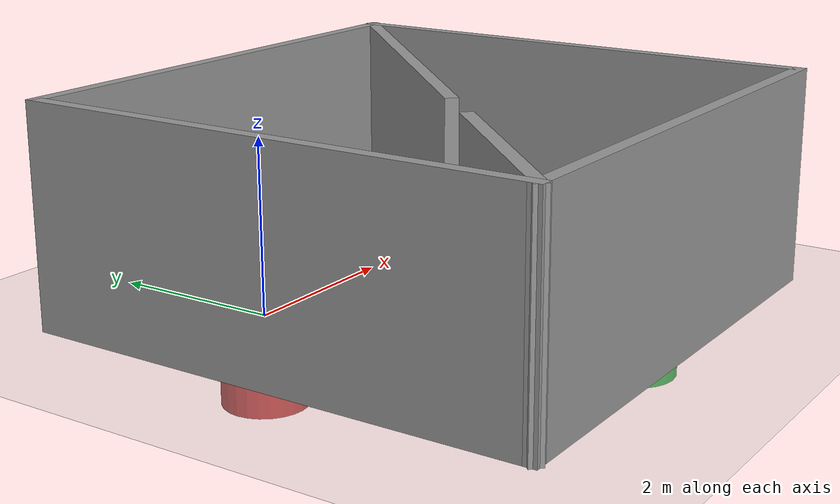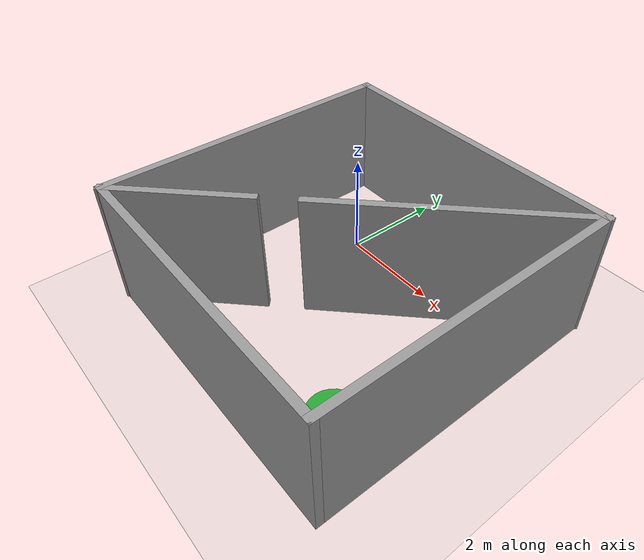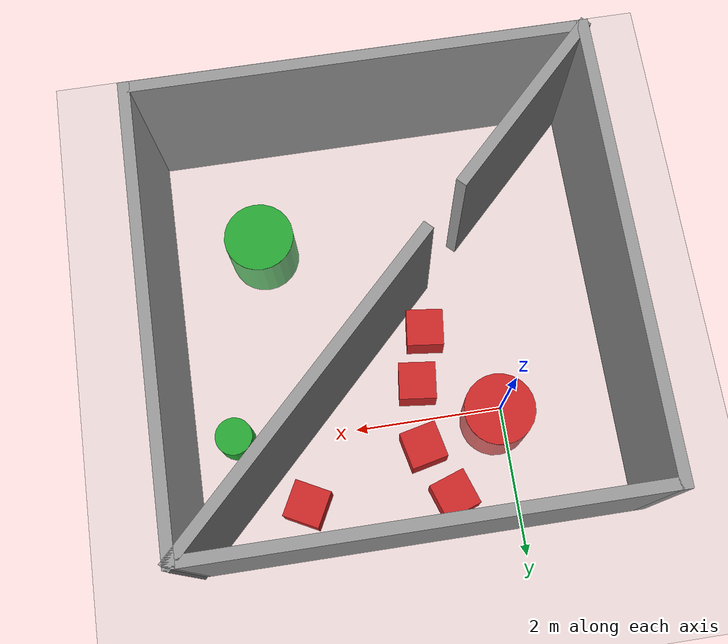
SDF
<sdf version="1.7">
 <world name="default">
  <light name="sun" type="directional">
   <pose>0 0 10 0 -0 0</pose>
   <diffuse>0.8 0.8 0.8 1</diffuse>
   <specular>0.2 0.2 0.2 1</specular>
   <attenuation>
    <range>1000</range>
    <constant>0.9</constant>
    <linear>0.01</linear>
    <quadratic>0.001</quadratic>
   </attenuation>
   <direction>-0.5 0.1 -0.9</direction>
   <spot><inner_angle>0</inner_angle><outer_angle>0</outer_angle><falloff>0</falloff></spot>
  </light>
  <model name="ground_plane">
   <static>1</static>
   <link name="link">
    <collision name="collision">
     <geometry><plane><normal>0 0 1</normal><size>100 100</size></plane></geometry>
     <surface><friction><ode><mu>100</mu><mu2>50</mu2></ode></friction></surface>
    </collision>
    <visual name="visual">
     <cast_shadows>0</cast_shadows>
     <geometry><plane><normal>0 0 1</normal><size>100 100</size></plane></geometry>
     <material>
      <script><uri>file://media/materials/scripts/gazebo.material</uri><name>Gazebo/Grey</name></script>
     </material>
    </visual>
   </link>
  </model>
  <gravity>0 0 -9.8</gravity>
  <magnetic_field>6e-06 2.3e-05 -4.2e-05</magnetic_field>
  <atmosphere type="adiabatic"/>
  <physics type="ode">
   <max_step_size>0.001</max_step_size>
   <real_time_factor>1</real_time_factor>
   <real_time_update_rate>1000</real_time_update_rate>
  </physics>
  <scene><ambient>0.4 0.4 0.4 1</ambient><background>0.7 0.7 0.7 1</background><shadows>1</shadows></scene>
  <audio><device>default</device></audio>
  <spherical_coordinates>
   <surface_model>EARTH_WGS84</surface_model>
   <latitude_deg>0</latitude_deg>
   <longitude_deg>0</longitude_deg>
   <elevation>0</elevation>
   <heading_deg>0</heading_deg>
  </spherical_coordinates>
  <model name="sq0">
   <pose>1.32814 -0.79317 0 0 -0 0</pose>
   <link name="Wall_0">
    <collision name="Wall_0_Collision">
     <geometry><box><size>6 0.15 2.5</size></box></geometry>
     <pose>0 0 1.25 0 -0 0</pose>
    </collision>
    <visual name="Wall_0_Visual">
     <pose>0 0 1.25 0 -0 0</pose>
     <geometry><box><size>6 0.15 2.5</size></box></geometry>
     <material>
      <script><uri>file://media/materials/scripts/gazebo.material</uri><name>Gazebo/Grey</name></script>
      <ambient>1 1 1 1</ambient>
     </material>
     <meta><layer>0</layer></meta>
    </visual>
    <pose>-0 2.35303 0 0 -0 0</pose>
   </link>
   <link name="Wall_10">
    <collision name="Wall_10_Collision">
     <geometry><box><size>5 0.15 2.5</size></box></geometry>
     <pose>0 0 1.25 0 -0 0</pose>
    </collision>
    <visual name="Wall_10_Visual">
     <pose>0 0 1.25 0 -0 0</pose>
     <geometry><box><size>5 0.15 2.5</size></box></geometry>
     <material>
      <script><uri>file://media/materials/scripts/gazebo.material</uri><name>Gazebo/Grey</name></script>
      <ambient>1 1 1 1</ambient>
     </material>
     <meta><layer>0</layer></meta>
    </visual>
    <pose>1.21027 0.638299 0 0 -0 -2.35619</pose>
   </link>
   <link name="Wall_3">
    <collision name="Wall_3_Collision">
     <geometry><box><size>6 0.15 2.5</size></box></geometry>
     <pose>0 0 1.25 0 -0 0</pose>
    </collision>
    <visual name="Wall_3_Visual">
     <pose>0 0 1.25 0 -0 0</pose>
     <geometry><box><size>6 0.15 2.5</size></box></geometry>
     <material>
      <script><uri>file://media/materials/scripts/gazebo.material</uri><name>Gazebo/Grey</name></script>
      <ambient>1 1 1 1</ambient>
     </material>
     <meta><layer>0</layer></meta>
    </visual>
    <pose>2.925 -0.571967 0 0 -0 -1.5708</pose>
   </link>
   <link name="Wall_5">
    <collision name="Wall_5_Collision">
     <geometry><box><size>6 0.15 2.5</size></box></geometry>
     <pose>0 0 1.25 0 -0 0</pose>
    </collision>
    <visual name="Wall_5_Visual">
     <pose>0 0 1.25 0 -0 0</pose>
     <geometry><box><size>6 0.15 2.5</size></box></geometry>
     <material>
      <script><uri>file://media/materials/scripts/gazebo.material</uri><name>Gazebo/Grey</name></script>
      <ambient>1 1 1 1</ambient>
     </material>
     <meta><layer>0</layer></meta>
    </visual>
    <pose>-0 -3.49697 0 0 -0 3.14159</pose>
   </link>
   <link name="Wall_6">
    <collision name="Wall_6_Collision">
     <geometry><box><size>6 0.15 2.5</size></box></geometry>
     <pose>0 0 1.25 0 -0 0</pose>
    </collision>
    <visual name="Wall_6_Visual">
     <pose>0 0 1.25 0 -0 0</pose>
     <geometry><box><size>6 0.15 2.5</size></box></geometry>
     <material>
      <script><uri>file://media/materials/scripts/gazebo.material</uri><name>Gazebo/Grey</name></script>
      <ambient>1 1 1 1</ambient>
     </material>
     <meta><layer>0</layer></meta>
    </visual>
    <pose>-2.925 -0.571967 0 0 -0 1.5708</pose>
   </link>
   <link name="Wall_8">
    <collision name="Wall_8_Collision">
     <geometry><box><size>2.75 0.15 2.5</size></box></geometry>
     <pose>0 0 1.25 0 -0 0</pose>
    </collision>
    <visual name="Wall_8_Visual">
     <pose>0 0 1.25 0 -0 0</pose>
     <geometry><box><size>2.75 0.15 2.5</size></box></geometry>
     <material>
      <script><uri>file://media/materials/scripts/gazebo.material</uri><name>Gazebo/Grey</name></script>
      <ambient>1 1 1 1</ambient>
     </material>
     <meta><layer>0</layer></meta>
    </visual>
    <pose>-2.00576 -2.57773 0 0 -0 0.785398</pose>
   </link>
   <static>1</static>
  </model>
  <model name="fixed_red_box">
   <link name="link">
    <inertial>
     <mass>1</mass>
     <inertia>
      <ixx>0.166667</ixx>
      <ixy>0</ixy>
      <ixz>0</ixz>
      <iyy>0.166667</iyy>
      <iyz>0</iyz>
      <izz>0.166667</izz>
     </inertia>
    </inertial>
    <visual name="visual">
     <geometry><box><size>0.5 0.5 0.5</size></box></geometry>
     <material>
      <script><name>Gazebo/Red</name><uri>file://media/materials/scripts/gazebo.material</uri></script>
      <shader type="pixel"><normal_map>__default__</normal_map></shader>
      <ambient>1 0 0 1</ambient>
      <diffuse>1 0 0 1</diffuse>
      <specular>0.1 0.1 0.1 1</specular>
      <emissive>0 0 0 1</emissive>
     </material>
    </visual>
    <collision name="collision">
     <max_contacts>5</max_contacts>
     <geometry><box><size>0.5 0.5 0.5</size></box></geometry>
     <surface>
      <friction>
       <ode><mu>0.5</mu><mu2>0.5</mu2><fdir1>0 0 0</fdir1><slip1>0</slip1><slip2>0</slip2></ode>
       <torsional>
        <coefficient>0.5</coefficient>
        <patch_radius>0</patch_radius>
        <surface_radius>0</surface_radius>
        <use_patch_radius>1</use_patch_radius>
        <ode><slip>0</slip></ode>
       </torsional>
      </friction>
      <bounce><restitution_coefficient>0</restitution_coefficient><threshold>1e+06</threshold></bounce>
      <contact>
       <collide_without_contact>0</collide_without_contact>
       <collide_without_contact_bitmask>1</collide_without_contact_bitmask>
       <collide_bitmask>1</collide_bitmask>
       <ode>
        <soft_cfm>0</soft_cfm>
        <soft_erp>0.2</soft_erp>
        <kp>1e+13</kp>
        <kd>1</kd>
        <max_vel>0.01</max_vel>
        <min_depth>0</min_depth>
       </ode>
       <bullet>
        <split_impulse>1</split_impulse>
        <split_impulse_penetration_threshold>-0.01</split_impulse_penetration_threshold>
        <soft_cfm>0</soft_cfm>
        <soft_erp>0.2</soft_erp>
        <kp>1e+13</kp>
        <kd>1</kd>
       </bullet>
      </contact>
     </surface>
    </collision>
   </link>
   <static>0</static>
   <pose>2.77426 0.934086 0.25 0 -0 1.08911</pose>
  </model>
  <model name="unit_cylinder">
   <link name="link">
    <inertial>
     <mass>1</mass>
     <inertia><ixx>0.145833</ixx><ixy>0</ixy><ixz>0</ixz><iyy>0.145833</iyy><iyz>0</iyz><izz>0.125</izz></inertia>
    </inertial>
    <visual name="visual">
     <geometry><cylinder><radius>0.25</radius><length>0.5</length></cylinder></geometry>
     <material>
      <script><name>Gazebo/Green</name><uri>file://media/materials/scripts/gazebo.material</uri></script>
      <shader type="pixel"><normal_map>__default__</normal_map></shader>
      <ambient>0 1 0 1</ambient>
      <diffuse>0 0.7 0 1</diffuse>
      <specular>0 0.01 0 1</specular>
      <emissive>0 0 0 1</emissive>
     </material>
    </visual>
    <collision name="collision">
     <geometry><cylinder><radius>0.25</radius><length>0.5</length></cylinder></geometry>
     <surface>
      <friction>
       <ode><mu>1</mu><mu2>1</mu2><fdir1>0 0 0</fdir1><slip1>0</slip1><slip2>0</slip2></ode>
       <torsional>
        <coefficient>1</coefficient>
        <patch_radius>0</patch_radius>
        <surface_radius>0</surface_radius>
        <use_patch_radius>1</use_patch_radius>
        <ode><slip>0</slip></ode>
       </torsional>
      </friction>
      <bounce><restitution_coefficient>0</restitution_coefficient><threshold>1e+06</threshold></bounce>
      <contact>
       <collide_without_contact>0</collide_without_contact>
       <collide_without_contact_bitmask>1</collide_without_contact_bitmask>
       <collide_bitmask>1</collide_bitmask>
       <ode>
        <soft_cfm>0</soft_cfm>
        <soft_erp>0.2</soft_erp>
        <kp>1e+13</kp>
        <kd>1</kd>
        <max_vel>0.01</max_vel>
        <min_depth>0</min_depth>
       </ode>
       <bullet>
        <split_impulse>1</split_impulse>
        <split_impulse_penetration_threshold>-0.01</split_impulse_penetration_threshold>
        <soft_cfm>0</soft_cfm>
        <soft_erp>0.2</soft_erp>
        <kp>1e+13</kp>
        <kd>1</kd>
       </bullet>
      </contact>
     </surface>
    </collision>
   </link>
   <static>0</static>
   <pose>3.61949 -0.085867 0.249991 0 -0 0</pose>
  </model>
  <model name="fixed_red_box_clone">
   <link name="link">
    <inertial>
     <mass>1</mass>
     <inertia>
      <ixx>0.166667</ixx>
      <ixy>0</ixy>
      <ixz>0</ixz>
      <iyy>0.166667</iyy>
      <iyz>0</iyz>
      <izz>0.166667</izz>
     </inertia>
    </inertial>
    <visual name="visual">
     <geometry><box><size>0.5 0.5 0.5</size></box></geometry>
     <material>
      <script><name>Gazebo/Red</name><uri>file://media/materials/scripts/gazebo.material</uri></script>
      <shader type="pixel"><normal_map>__default__</normal_map></shader>
      <ambient>1 0 0 1</ambient>
      <diffuse>1 0 0 1</diffuse>
      <specular>0.1 0.1 0.1 1</specular>
      <emissive>0 0 0 1</emissive>
     </material>
    </visual>
    <collision name="collision">
     <max_contacts>5</max_contacts>
     <geometry><box><size>0.5 0.5 0.5</size></box></geometry>
     <surface>
      <friction>
       <ode><mu>0.5</mu><mu2>0.5</mu2><fdir1>0 0 0</fdir1><slip1>0</slip1><slip2>0</slip2></ode>
       <torsional>
        <coefficient>0.5</coefficient>
        <patch_radius>0</patch_radius>
        <surface_radius>0</surface_radius>
        <use_patch_radius>1</use_patch_radius>
        <ode><slip>0</slip></ode>
       </torsional>
      </friction>
      <bounce><restitution_coefficient>0</restitution_coefficient><threshold>1e+06</threshold></bounce>
      <contact>
       <collide_without_contact>0</collide_without_contact>
       <collide_without_contact_bitmask>1</collide_without_contact_bitmask>
       <collide_bitmask>1</collide_bitmask>
       <ode>
        <soft_cfm>0</soft_cfm>
        <soft_erp>0.2</soft_erp>
        <kp>1e+13</kp>
        <kd>1</kd>
        <max_vel>0.01</max_vel>
        <min_depth>0</min_depth>
       </ode>
       <bullet>
        <split_impulse>1</split_impulse>
        <split_impulse_penetration_threshold>-0.01</split_impulse_penetration_threshold>
        <soft_cfm>0</soft_cfm>
        <soft_erp>0.2</soft_erp>
        <kp>1e+13</kp>
        <kd>1</kd>
       </bullet>
      </contact>
     </surface>
    </collision>
   </link>
   <static>0</static>
   <pose>0.842069 1.10357 0.25 0 -0 1.90442</pose>
  </model>
  <model name="fixed_red_box_clone_0">
   <link name="link">
    <inertial>
     <mass>1</mass>
     <inertia>
      <ixx>0.166667</ixx>
      <ixy>0</ixy>
      <ixz>0</ixz>
      <iyy>0.166667</iyy>
      <iyz>0</iyz>
      <izz>0.166667</izz>
     </inertia>
    </inertial>
    <visual name="visual">
     <geometry><box><size>0.5 0.5 0.5</size></box></geometry>
     <material>
      <script><name>Gazebo/Red</name><uri>file://media/materials/scripts/gazebo.material</uri></script>
      <shader type="pixel"><normal_map>__default__</normal_map></shader>
      <ambient>1 0 0 1</ambient>
      <diffuse>1 0 0 1</diffuse>
      <specular>0.1 0.1 0.1 1</specular>
      <emissive>0 0 0 1</emissive>
     </material>
    </visual>
    <collision name="collision">
     <max_contacts>5</max_contacts>
     <geometry><box><size>0.5 0.5 0.5</size></box></geometry>
     <surface>
      <friction>
       <ode><mu>0.5</mu><mu2>0.5</mu2><fdir1>0 0 0</fdir1><slip1>0</slip1><slip2>0</slip2></ode>
       <torsional>
        <coefficient>0.5</coefficient>
        <patch_radius>0</patch_radius>
        <surface_radius>0</surface_radius>
        <use_patch_radius>1</use_patch_radius>
        <ode><slip>0</slip></ode>
       </torsional>
      </friction>
      <bounce><restitution_coefficient>0</restitution_coefficient><threshold>1e+06</threshold></bounce>
      <contact>
       <collide_without_contact>0</collide_without_contact>
       <collide_without_contact_bitmask>1</collide_without_contact_bitmask>
       <collide_bitmask>1</collide_bitmask>
       <ode>
        <soft_cfm>0</soft_cfm>
        <soft_erp>0.2</soft_erp>
        <kp>1e+13</kp>
        <kd>1</kd>
        <max_vel>0.01</max_vel>
        <min_depth>0</min_depth>
       </ode>
       <bullet>
        <split_impulse>1</split_impulse>
        <split_impulse_penetration_threshold>-0.01</split_impulse_penetration_threshold>
        <soft_cfm>0</soft_cfm>
        <soft_erp>0.2</soft_erp>
        <kp>1e+13</kp>
        <kd>1</kd>
       </bullet>
      </contact>
     </surface>
    </collision>
   </link>
   <static>0</static>
   <pose>1.14667 0.402974 0.25 0 -0 1.79078</pose>
  </model>
  <model name="fixed_red_box_clone_1">
   <link name="link">
    <inertial>
     <mass>1</mass>
     <inertia>
      <ixx>0.166667</ixx>
      <ixy>0</ixy>
      <ixz>0</ixz>
      <iyy>0.166667</iyy>
      <iyz>0</iyz>
      <izz>0.166667</izz>
     </inertia>
    </inertial>
    <visual name="visual">
     <geometry><box><size>0.5 0.5 0.5</size></box></geometry>
     <material>
      <script><name>Gazebo/Red</name><uri>file://media/materials/scripts/gazebo.material</uri></script>
      <shader type="pixel"><normal_map>__default__</normal_map></shader>
      <ambient>1 0 0 1</ambient>
      <diffuse>1 0 0 1</diffuse>
      <specular>0.1 0.1 0.1 1</specular>
      <emissive>0 0 0 1</emissive>
     </material>
    </visual>
    <collision name="collision">
     <max_contacts>5</max_contacts>
     <geometry><box><size>0.5 0.5 0.5</size></box></geometry>
     <surface>
      <friction>
       <ode><mu>0.5</mu><mu2>0.5</mu2><fdir1>0 0 0</fdir1><slip1>0</slip1><slip2>0</slip2></ode>
       <torsional>
        <coefficient>0.5</coefficient>
        <patch_radius>0</patch_radius>
        <surface_radius>0</surface_radius>
        <use_patch_radius>1</use_patch_radius>
        <ode><slip>0</slip></ode>
       </torsional>
      </friction>
      <bounce><restitution_coefficient>0</restitution_coefficient><threshold>1e+06</threshold></bounce>
      <contact>
       <collide_without_contact>0</collide_without_contact>
       <collide_without_contact_bitmask>1</collide_without_contact_bitmask>
       <collide_bitmask>1</collide_bitmask>
       <ode>
        <soft_cfm>0</soft_cfm>
        <soft_erp>0.2</soft_erp>
        <kp>1e+13</kp>
        <kd>1</kd>
        <max_vel>0.01</max_vel>
        <min_depth>0</min_depth>
       </ode>
       <bullet>
        <split_impulse>1</split_impulse>
        <split_impulse_penetration_threshold>-0.01</split_impulse_penetration_threshold>
        <soft_cfm>0</soft_cfm>
        <soft_erp>0.2</soft_erp>
        <kp>1e+13</kp>
        <kd>1</kd>
       </bullet>
      </contact>
     </surface>
    </collision>
   </link>
   <static>0</static>
   <pose>1.0939 -0.465677 0.25 0 -0 1.45568</pose>
  </model>
  <model name="fixed_red_box_clone_1_clone">
   <link name="link">
    <inertial>
     <mass>1</mass>
     <inertia>
      <ixx>0.166667</ixx>
      <ixy>0</ixy>
      <ixz>0</ixz>
      <iyy>0.166667</iyy>
      <iyz>0</iyz>
      <izz>0.166667</izz>
     </inertia>
    </inertial>
    <visual name="visual">
     <geometry><box><size>0.5 0.5 0.5</size></box></geometry>
     <material>
      <script><name>Gazebo/Red</name><uri>file://media/materials/scripts/gazebo.material</uri></script>
      <shader type="pixel"><normal_map>__default__</normal_map></shader>
      <ambient>1 0 0 1</ambient>
      <diffuse>1 0 0 1</diffuse>
      <specular>0.1 0.1 0.1 1</specular>
      <emissive>0 0 0 1</emissive>
     </material>
    </visual>
    <collision name="collision">
     <max_contacts>5</max_contacts>
     <geometry><box><size>0.5 0.5 0.5</size></box></geometry>
     <surface>
      <friction>
       <ode><mu>0.5</mu><mu2>0.5</mu2><fdir1>0 0 0</fdir1><slip1>0</slip1><slip2>0</slip2></ode>
       <torsional>
        <coefficient>0.5</coefficient>
        <patch_radius>0</patch_radius>
        <surface_radius>0</surface_radius>
        <use_patch_radius>1</use_patch_radius>
        <ode><slip>0</slip></ode>
       </torsional>
      </friction>
      <bounce><restitution_coefficient>0</restitution_coefficient><threshold>1e+06</threshold></bounce>
      <contact>
       <collide_without_contact>0</collide_without_contact>
       <collide_without_contact_bitmask>1</collide_without_contact_bitmask>
       <collide_bitmask>1</collide_bitmask>
       <ode>
        <soft_cfm>0</soft_cfm>
        <soft_erp>0.2</soft_erp>
        <kp>1e+13</kp>
        <kd>1</kd>
        <max_vel>0.01</max_vel>
        <min_depth>0</min_depth>
       </ode>
       <bullet>
        <split_impulse>1</split_impulse>
        <split_impulse_penetration_threshold>-0.01</split_impulse_penetration_threshold>
        <soft_cfm>0</soft_cfm>
        <soft_erp>0.2</soft_erp>
        <kp>1e+13</kp>
        <kd>1</kd>
       </bullet>
      </contact>
     </surface>
    </collision>
   </link>
   <static>0</static>
   <pose>0.876612 -1.18094 0.25 0 -0 1.45568</pose>
  </model>
  <model name="unit_cylinder_0">
   <link name="link">
    <inertial>
     <mass>1</mass>
     <inertia><ixx>0.145833</ixx><ixy>0</ixy><ixz>0</ixz><iyy>0.145833</iyy><iyz>0</iyz><izz>0.125</izz></inertia>
    </inertial>
    <gravity>0</gravity>
    <visual name="visual">
     <geometry><cylinder><radius>0.5</radius><length>1</length></cylinder></geometry>
     <material>
      <script><name>Gazebo/Red</name><uri>file://media/materials/scripts/gazebo.material</uri></script>
      <shader type="pixel"><normal_map>__default__</normal_map></shader>
      <ambient>1 0 0 1</ambient>
      <diffuse>1 0 0 1</diffuse>
      <specular>0.1 0.1 0.1 1</specular>
      <emissive>0 0 0 1</emissive>
     </material>
    </visual>
   </link>
   <static>0</static>
   <pose>0 0 -0.498 0 -0 0</pose>
  </model>
  <model name="unit_cylinder_0_clone">
   <link name="link">
    <inertial>
     <mass>1</mass>
     <inertia><ixx>0.145833</ixx><ixy>0</ixy><ixz>0</ixz><iyy>0.145833</iyy><iyz>0</iyz><izz>0.125</izz></inertia>
    </inertial>
    <enable_wind>1</enable_wind>
    <gravity>0</gravity>
    <visual name="visual">
     <geometry><cylinder><radius>0.5</radius><length>1</length></cylinder></geometry>
     <material>
      <script><name>Gazebo/Green</name><uri>file://media/materials/scripts/gazebo.material</uri></script>
      <shader type="pixel"><normal_map>__default__</normal_map></shader>
      <ambient>0 1 0 1</ambient>
      <diffuse>0 0.9 0 1</diffuse>
      <specular>0.1 0.1 0.1 1</specular>
      <emissive>0 0 0 1</emissive>
     </material>
    </visual>
   </link>
   <static>0</static>
   <pose>3 -3 -0.498 0 -0 0</pose>
  </model>
 </world>
</sdf>
